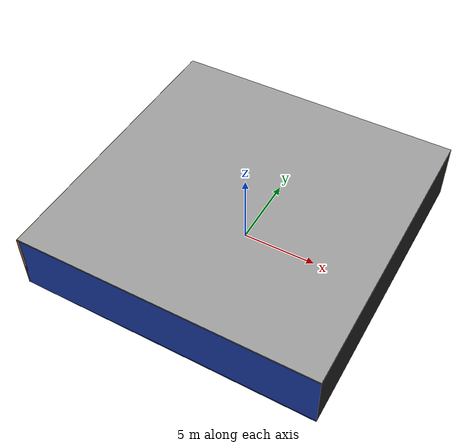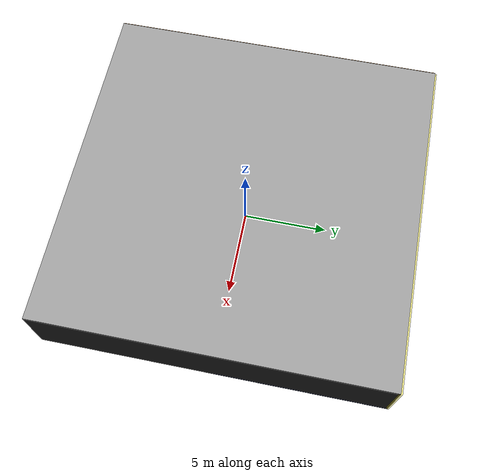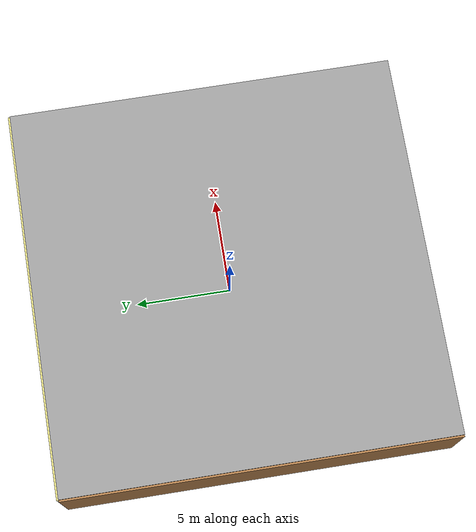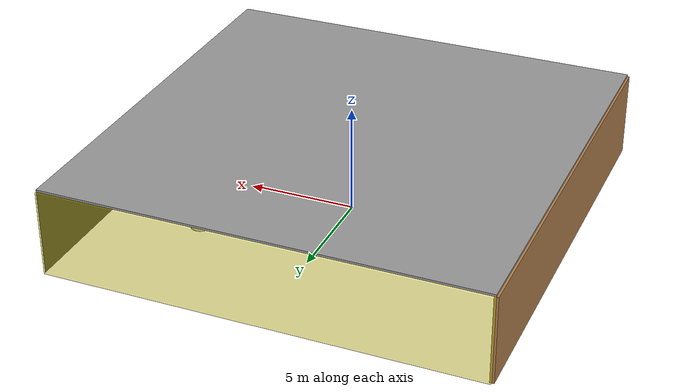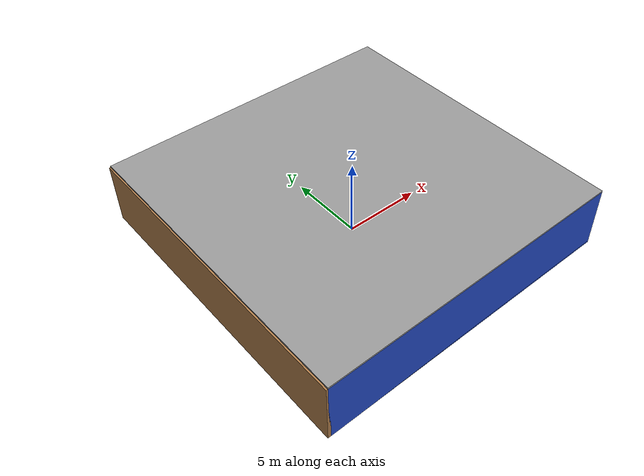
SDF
<sdf version="1.4">
 <world name="default">
  <physics type="ode">
   <max_step_size>0.001</max_step_size>
   <real_time_factor>1</real_time_factor>
   <real_time_update_rate>1000</real_time_update_rate>
   <gravity>0 0 -9.8</gravity>
  </physics>
  <scene><ambient>0.4 0.4 0.4 1</ambient><background>0.7 0.7 0.7 1</background><shadows>1</shadows></scene>
  <model name="Surrounding">
   <static>1</static>
   <link name="Ceiling">
    <collision name="Ceiling_Collision"><geometry><box><size>20 20 0.1</size></box></geometry></collision>
    <visual name="Ceiling_Visual">
     <geometry><box><size>20 20 0.1</size></box></geometry>
     <material>
      <script><uri>file://media/materials/scripts/gazebo.material</uri><name>Gazebo/GreyGradientSky</name></script>
     </material>
    </visual>
    <pose>0 0 4.05 0 0 0</pose>
   </link>
   <link name="Wall_South">
    <collision name="Wall_South_Collision">
     <geometry><box><size>20 0 4</size></box></geometry>
     <pose>0 0 2 0 -0 0</pose>
    </collision>
    <visual name="Wall_South_Visual">
     <pose>0 0 2 0 -0 0</pose>
     <geometry><box><size>20 0 4</size></box></geometry>
     <material>
      <script><uri>file://media/materials/scripts/gazebo.material</uri><name>Gazebo/Blue</name></script>
     </material>
    </visual>
    <velocity_decay><linear>0</linear><angular>0</angular></velocity_decay>
    <pose>0 -10 0 0 -0 0</pose>
   </link>
   <link name="Wall_East">
    <collision name="Wall_21_Collision">
     <geometry><box><size>20 0 4</size></box></geometry>
     <pose>0 0 2 0 -0 0</pose>
    </collision>
    <visual name="Wall_21_Visual">
     <pose>0 0 2 0 -0 0</pose>
     <geometry><box><size>20 0 4</size></box></geometry>
     <material>
      <script><uri>file://media/materials/scripts/gazebo.material</uri><name>Gazebo/Black</name></script>
     </material>
    </visual>
    <velocity_decay><linear>0</linear><angular>0</angular></velocity_decay>
    <pose>10 0 0 0 -0 1.5708</pose>
   </link>
   <link name="Wall_North">
    <collision name="Wall_22_Collision">
     <geometry><box><size>20 0.2 4</size></box></geometry>
     <pose>0 0 2 0 -0 0</pose>
    </collision>
    <visual name="Wall_22_Visual">
     <pose>0 0 2 0 -0 0</pose>
     <geometry><box><size>20 0.2 4</size></box></geometry>
     <material>
      <script>
       <uri>file://media/materials/scripts/gazebo.material</uri>
       <name>Gazebo/YellowTransparent</name>
      </script>
     </material>
    </visual>
    <velocity_decay><linear>0</linear><angular>0</angular></velocity_decay>
    <pose>0 10 0 0 -0 0</pose>
   </link>
   <link name="Wall_West">
    <collision name="Wall_23_Collision">
     <geometry><box><size>20 0.2 4</size></box></geometry>
     <pose>0 0 2 0 -0 0</pose>
    </collision>
    <visual name="Wall_23_Visual">
     <pose>0 0 2 0 -0 0</pose>
     <geometry><box><size>20 0.2 4</size></box></geometry>
     <material>
      <script><uri>file://media/materials/scripts/gazebo.material</uri><name>Gazebo/Wood</name></script>
     </material>
    </visual>
    <velocity_decay><linear>0</linear><angular>0</angular></velocity_decay>
    <pose>-10 0 0 0 0 -1.5708</pose>
   </link>
   <link name="Ground_link">
    <collision name="collision">
     <pose>0 0 .05 0 -0 0</pose>
     <geometry><box><size>20 20 0.1</size></box></geometry>
    </collision>
    <visual name="visual">
     <pose>0 0 .05 0 -0 0</pose>
     <geometry><box><size>20 20 0.1</size></box></geometry>
     <material>
      <script><uri>file://media/materials/scripts/gazebo.material</uri><name>Gazebo/BlueTransparent</name></script>
     </material>
    </visual>
   </link>
   <static>1</static>
  </model>
  <spherical_coordinates>
   <surface_model>EARTH_WGS84</surface_model>
   <latitude_deg>0</latitude_deg>
   <longitude_deg>0</longitude_deg>
   <elevation>0</elevation>
   <heading_deg>0</heading_deg>
  </spherical_coordinates>
  <light name="lightball_0" type="diffuse">
   <diffuse>0.8 0.8 0.8 1</diffuse>
   <specular>0.2 0.2 0.2 1</specular>
   <attenuation>
    <range>100</range>
    <constant>0.7</constant>
    <linear>0.01</linear>
    <quadratic>0.001</quadratic>
   </attenuation>
   <direction>-0.5 0.1 -0.9</direction>
   <pose>-0.302960499889 1.68447416003 2.63627185758 0 0 0</pose>
  </light>
  <light name="lightball_1" type="diffuse">
   <diffuse>0.8 0.8 0.8 1</diffuse>
   <specular>0.2 0.2 0.2 1</specular>
   <attenuation>
    <range>100</range>
    <constant>0.7</constant>
    <linear>0.01</linear>
    <quadratic>0.001</quadratic>
   </attenuation>
   <direction>-0.5 0.1 -0.9</direction>
   <pose>-1.08148787249 5.82892586776 2.26844559183 0 0 0</pose>
  </light>
  <light name="lightball_2" type="diffuse">
   <diffuse>0.8 0.8 0.8 1</diffuse>
   <specular>0.2 0.2 0.2 1</specular>
   <attenuation>
    <range>100</range>
    <constant>0.7</constant>
    <linear>0.01</linear>
    <quadratic>0.001</quadratic>
   </attenuation>
   <direction>-0.5 0.1 -0.9</direction>
   <pose>-3.44201774872 -8.25476088508 0.732788487133 0 0 0</pose>
  </light>
  <light name="lightball_3" type="diffuse">
   <diffuse>0.8 0.8 0.8 1</diffuse>
   <specular>0.2 0.2 0.2 1</specular>
   <attenuation>
    <range>100</range>
    <constant>0.7</constant>
    <linear>0.01</linear>
    <quadratic>0.001</quadratic>
   </attenuation>
   <direction>-0.5 0.1 -0.9</direction>
   <pose>-5.24675245341 3.37336612292 3.55157786352 0 0 0</pose>
  </light>
  <include><uri>model://cabinet</uri><pose>1.23347346594 -1.67427030871 0 0 0 0.545062529817</pose></include>
  <include><uri>model://cabinet</uri><pose>4.46152060027 -4.50627044986 0 0 0 2.26311378548</pose></include>
  <include><uri>model://cabinet</uri><pose>4.44729750121 1.59159682805 0 0 0 1.94074464821</pose></include>
  <include>
   <uri>model://textured_shapes</uri>
   <pose>6.99173123384 2.20688695404 0 0 0 0.716871579046</pose>
  </include>
 </world>
</sdf>

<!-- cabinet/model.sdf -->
<sdf version="1.5">
  <model name="cabinet">
    <static>true</static>
    <link name="cabinet_bottom_plate">
      <inertial>
        <pose>0 0 -1 0 0 0</pose>
        <inertia>
          <ixx>2.050000</ixx>
          <ixy>0</ixy>
          <ixz>0</ixz>
          <iyy>2.050000</iyy>
          <iyz>0</iyz>
          <izz>2.050000</izz>
        </inertia>
        <mass>25.000000</mass>
      </inertial>
      <collision name="cabinet_bottom_plate_geom">
        <pose>0 0 0.010000 0 0 0</pose>
        <geometry>
          <box>
            <size>0.450000 0.450000 0.020000</size>
          </box>
        </geometry>
      </collision>
      <visual name="cabinet_bottom_plate_geom_visual">
        <pose>0 0 0.010000 0 0 0</pose>
        <geometry>
          <box>
            <size>0.450000 0.450000 0.020000</size>
          </box>
        </geometry>
        <material>
          <script>
            <uri>model://media/materials/scripts/gazebo.material</uri>
            <name>Gazebo/Wood</name>
          </script>
        </material>
      </visual>
      <collision name="cabinet_bottom_plate_geom_cabinet_back_plate">
        <pose>0.235000 0 0.510000 0 0 0</pose>
        <geometry>
          <box>
            <size>0.020000 0.450000 1.020000</size>
          </box>
        </geometry>
      </collision>
      <visual name="cabinet_bottom_plate_geom_cabinet_back_plate_visual">
        <pose>0.235000 0 0.510000 0 0 0</pose>
        <geometry>
          <box>
            <size>0.020000 0.450000 1.020000</size>
          </box>
        </geometry>
        <material>
          <script>
            <uri>model://media/materials/scripts/gazebo.material</uri>
            <name>Gazebo/Wood</name>
          </script>
        </material>
      </visual>
      <collision name="cabinet_bottom_plate_geom_cabinet_left_plate">
        <pose>0 0.235000 0.510000 0 0 0</pose>
        <geometry>
          <box>
            <size>0.450000 0.020000 1.020000</size>
          </box>
        </geometry>
      </collision>
      <visual name="cabinet_bottom_plate_geom_cabinet_left_plate_visual">
        <pose>0 0.235000 0.510000 0 0 0</pose>
        <geometry>
          <box>
            <size>0.450000 0.020000 1.020000</size>
          </box>
        </geometry>
        <material>
          <script>
            <uri>model://media/materials/scripts/gazebo.material</uri>
            <name>Gazebo/Wood</name>
          </script>
        </material>
      </visual>
      <collision name="cabinet_bottom_plate_geom_cabinet_middle_plate">
        <pose>0 0 0.510000 0 0 0</pose>
        <geometry>
          <box>
            <size>0.450000 0.450000 0.020000</size>
          </box>
        </geometry>
      </collision>
      <visual name="cabinet_bottom_plate_geom_cabinet_middle_plate_visual">
        <pose>0 0 0.510000 0 0 0</pose>
        <geometry>
          <box>
            <size>0.450000 0.450000 0.020000</size>
          </box>
        </geometry>
        <material>
          <script>
            <uri>model://media/materials/scripts/gazebo.material</uri>
            <name>Gazebo/Wood</name>
          </script>
        </material>
      </visual>
      <collision name="cabinet_bottom_plate_geom_cabinet_right_plate">
        <pose>0 -0.235000 0.510000 0 0 0</pose>
        <geometry>
          <box>
            <size>0.450000 0.020000 1.020000</size>
          </box>
        </geometry>
      </collision>
      <visual name="cabinet_bottom_plate_geom_cabinet_right_plate_visual">
        <pose>0 -0.235000 0.510000 0 0 0</pose>
        <geometry>
          <box>
            <size>0.450000 0.020000 1.020000</size>
          </box>
        </geometry>
        <material>
          <script>
            <uri>model://media/materials/scripts/gazebo.material</uri>
            <name>Gazebo/Wood</name>
          </script>
        </material>
      </visual>
      <collision name="cabinet_bottom_plate_geom_cabinet_top_plate">
        <pose>0 0 1.010000 0 0 0</pose>
        <geometry>
          <box>
            <size>0.450000 0.450000 0.020000</size>
          </box>
        </geometry>
      </collision>
      <visual name="cabinet_bottom_plate_geom_cabinet_top_plate_visual">
        <pose>0 0 1.010000 0 0 0</pose>
        <geometry>
          <box>
            <size>0.450000 0.450000 0.020000</size>
          </box>
        </geometry>
        <material>
          <script>
            <uri>model://media/materials/scripts/gazebo.material</uri>
            <name>Gazebo/Wood</name>
          </script>
        </material>
      </visual>
    </link>
  </model>
</sdf>

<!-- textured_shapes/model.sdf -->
<sdf version="1.6">
  <model name="textured_shapes">
    <pose>0 0 0.5 0 0 0</pose>
    <link name="box">
      <pose>0 -1.5 0 0 0 0</pose>
      <collision name="collision">
        <geometry>
          <box>
            <size>1 1 1</size>
          </box>
        </geometry>
      </collision>
      <visual name="visual">
        <geometry>
          <box>
            <size>1 1 1</size>
          </box>
        </geometry>
        <material>
          <script>
            <uri>model://../model_source/models/textured_shapes/materials/scripts</uri>
            <uri>model://../model_source/models/textured_shapes/materials/textures</uri>
            <name>TexturedShape/Squares</name>
          </script>
        </material>
      </visual>
    </link>
    <link name="sphere">
      <collision name="collision">
        <geometry>
          <sphere>
            <radius>0.5</radius>
          </sphere>
        </geometry>
      </collision>
      <visual name="visual">
        <geometry>
          <sphere>
            <radius>0.5</radius>
          </sphere>
        </geometry>
        <material>
          <script>
            <uri>model://../model_source/models/textured_shapes/materials/scripts</uri>
            <uri>model://../model_source/models/textured_shapes/materials/textures</uri>
            <name>TexturedShape/Squares</name>
          </script>
        </material>
      </visual>
    </link>
    <link name="cylinder">
      <pose>0 1.5 0 0 0 0</pose>
      <collision name="collision">
        <geometry>
          <cylinder>
            <radius>0.5</radius>
            <length>1</length>
          </cylinder>
        </geometry>
      </collision>
      <visual name="visual">
        <geometry>
          <cylinder>
            <radius>0.5</radius>
            <length>1</length>
          </cylinder>
        </geometry>
        <material>
          <script>
            <uri>model://../model_source/models/textured_shapes/materials/scripts</uri>
            <uri>model://../model_source/models/textured_shapes/materials/textures</uri>
            <name>TexturedShape/Squares</name>
          </script>
        </material>
      </visual>
    </link>
  </model>
</sdf>
